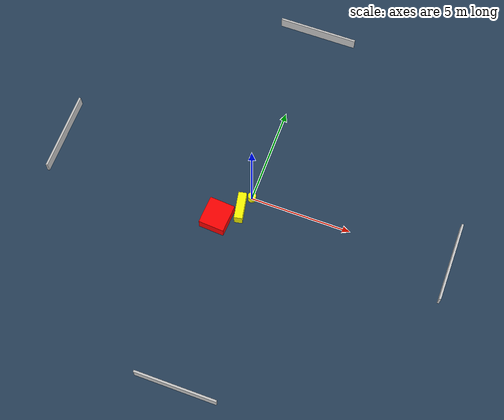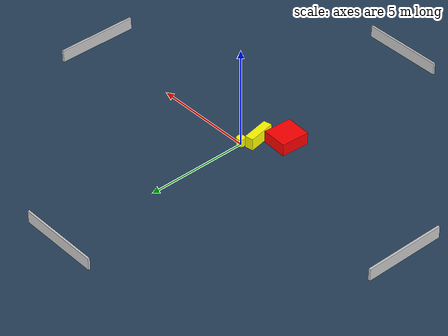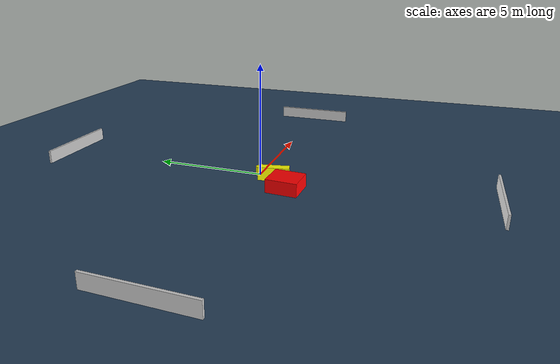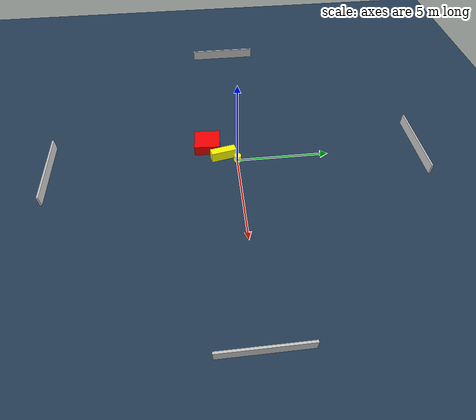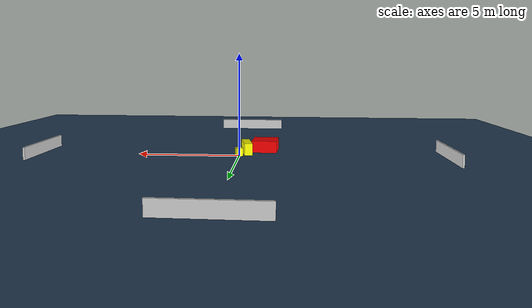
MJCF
<?xml version="1.0" ?>
<mujoco model="generated_environment">
  <option timestep="0.01" integrator="RK4" cone="elliptic"/>
  <default>
    <geom density="1"/>
  </default>
  <asset>
    <texture builtin="gradient" height="3072" name="skybox" rgb1="0.3 0.5 0.7" rgb2="0 0 0" type="skybox" width="512"/>
    <texture builtin="checker" height="300" name="groundplane" rgb1="0.2 0.3 0.4" rgb2="0.1 0.2 0.3" type="2d" width="300"/>
    <material name="groundplane" reflectance="0.2" texrepeat="5 5" texture="groundplane"/>
  </asset>
  <worldbody>
    <light dir="0 0 -1" directional="true" pos="0 0 1.5"/>
    <geom condim="3" friction="0.5 0.005 0.001" material="groundplane" name="floor" pos="0 0 0" size="0 0 0.05" type="plane"/>
    <body name="walls">
      <geom name="wall_1" condim="4" pos="-10.0 0.0 0.3" rgba="0.800000011920929 0.800000011920929 0.800000011920929 1.0" size="0.05 2.0 0.3" type="box"/>
      <geom name="wall_2" condim="4" pos="10.0 0.0 0.3" rgba="0.800000011920929 0.800000011920929 0.800000011920929 1.0" size="0.05 2.0 0.3" type="box"/>
      <geom name="wall_3" condim="4" pos="0.0 -10.0 0.3" rgba="0.800000011920929 0.800000011920929 0.800000011920929 1.0" size="2.0 0.05 0.3" type="box"/>
      <geom name="wall_4" condim="4" pos="0.0 10.0 0.3" rgba="0.800000011920929 0.800000011920929 0.800000011920929 1.0" size="2.0 0.05 0.3" type="box"/>
    </body>
    <body name="robot">
      <joint name="joint_x" type="slide" pos="0 0 0" axis="1 0 0"/>
      <joint name="joint_y" type="slide" pos="0 0 0" axis="0 1 0"/>
      <geom name="robot" type="cylinder" pos="0.0 0.0 0.2" size="0.2 0.2 0.0" mass="5.0" friction="1.0 0.005 0.0001" condim="4" rgba="1.0 1.0 0.0 1.0"/>
    </body>
    <body name="obstacle_1_movable">
      <geom name="obstacle_1_movable" condim="4" pos="-0.32972306379802896 -0.7391841323640223 0.3" euler="0 0 10.698134814752663" friction="0.0 0.005 0.001" rgba="1.0 1.0 0.0 1.0" size="0.20477656576912995 0.6823978760433005 0.3" type="box" mass="0.1"/>
      <joint type="free"/>
    </body>
    <body name="obstacle_2_static">
      <geom name="obstacle_2_static" condim="4" pos="-1.2322382681515684 -1.5590994954822304 0.3" euler="0 0 86.61126200060731" friction="0.0 0.005 0.001" rgba="1.0 0.0 0.0 1.0" size="0.6937186537687001 0.6331107102047699 0.3" type="box"/>
    </body>
  </worldbody>
  <actuator>
    <motor name="actuator_x" joint="joint_x" gear="1" ctrlrange="-1 1"/>
    <motor name="actuator_y" joint="joint_y" gear="1" ctrlrange="-1 1"/>
  </actuator>
</mujoco>
